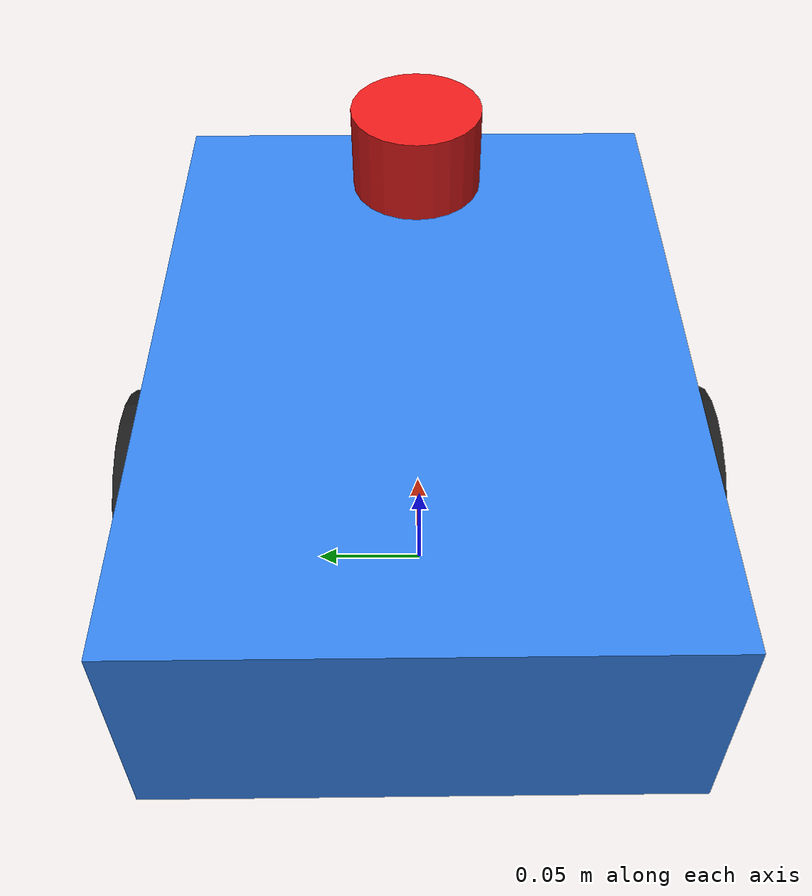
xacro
<?xml version="1.0"?>
<robot name="minibot" xmlns:xacro="http://ros.org/wiki/xacro">

  <!-- Per-robot args (set by spawner) -->
  <xacro:arg name="robot_ns" default="robot0"/>
  <xacro:property name="ns" value="$(arg robot_ns)"/>

  <!-- Geometry -->
  <xacro:property name="base_x"      value="0.30"/>
  <xacro:property name="base_y"      value="0.22"/>
  <xacro:property name="base_z"      value="0.10"/>
  <xacro:property name="wheel_r"     value="0.05"/>
  <xacro:property name="wheel_w"     value="0.025"/>
  <xacro:property name="wheel_sep"   value="0.24"/>   <!-- track width -->
  <xacro:property name="caster_r"    value="0.025"/>

  <xacro:property name="base_mass"   value="3.0"/>
  <xacro:property name="wheel_mass"  value="0.15"/>
  <xacro:property name="caster_mass" value="0.05"/>

  <!-- Inertia helpers -->
  <xacro:macro name="box_inertia" params="m x y z">
    <inertia ixx="${m*(y*y+z*z)/12.0}" ixy="0" ixz="0"
             iyy="${m*(x*x+z*z)/12.0}" iyz="0"
             izz="${m*(x*x+y*y)/12.0}"/>
  </xacro:macro>
  <xacro:macro name="cyl_inertia" params="m r h">
    <inertia ixx="${m*(3*r*r+h*h)/12.0}" ixy="0" ixz="0"
             iyy="${m*(3*r*r+h*h)/12.0}" iyz="0"
             izz="${m*r*r/2.0}"/>
  </xacro:macro>
  <xacro:macro name="sph_inertia" params="m r">
    <inertia ixx="${2*m*r*r/5.0}" ixy="0" ixz="0"
             iyy="${2*m*r*r/5.0}" iyz="0"
             izz="${2*m*r*r/5.0}"/>
  </xacro:macro>

  <!-- ============ Links ============ -->
  <link name="base_footprint"/>

  <link name="base_link">
    <visual>
      <origin xyz="0 0 0" rpy="0 0 0"/>
      <geometry><box size="${base_x} ${base_y} ${base_z}"/></geometry>
      <material name="body"><color rgba="0.2 0.5 0.9 1"/></material>
    </visual>
    <collision>
      <geometry><box size="${base_x} ${base_y} ${base_z}"/></geometry>
    </collision>
    <inertial>
      <mass value="${base_mass}"/>
      <xacro:box_inertia m="${base_mass}" x="${base_x}" y="${base_y}" z="${base_z}"/>
    </inertial>
  </link>

  <joint name="base_footprint_to_base_link" type="fixed">
    <parent link="base_footprint"/>
    <child  link="base_link"/>
    <origin xyz="0 0 ${wheel_r + base_z/2.0}" rpy="0 0 0"/>
  </joint>

  <!-- Wheels -->
  <xacro:macro name="wheel" params="side y_sign">
    <link name="${side}_wheel_link">
      <visual>
        <origin xyz="0 0 0" rpy="${pi/2} 0 0"/>
        <geometry><cylinder radius="${wheel_r}" length="${wheel_w}"/></geometry>
        <material name="rubber"><color rgba="0.1 0.1 0.1 1"/></material>
      </visual>
      <collision>
        <origin xyz="0 0 0" rpy="${pi/2} 0 0"/>
        <geometry><cylinder radius="${wheel_r}" length="${wheel_w}"/></geometry>
      </collision>
      <inertial>
        <mass value="${wheel_mass}"/>
        <xacro:cyl_inertia m="${wheel_mass}" r="${wheel_r}" h="${wheel_w}"/>
      </inertial>
    </link>
    <joint name="${side}_wheel_joint" type="continuous">
      <parent link="base_link"/>
      <child  link="${side}_wheel_link"/>
      <origin xyz="0 ${y_sign*wheel_sep/2.0} ${-base_z/2.0}" rpy="0 0 0"/>
      <axis xyz="0 1 0"/>
    </joint>
  </xacro:macro>

  <xacro:wheel side="left"  y_sign="1"/>
  <xacro:wheel side="right" y_sign="-1"/>

  <!-- Caster (free sphere up front) -->
  <link name="caster_link">
    <visual>
      <geometry><sphere radius="${caster_r}"/></geometry>
      <material name="rubber"><color rgba="0.1 0.1 0.1 1"/></material>
    </visual>
    <collision>
      <geometry><sphere radius="${caster_r}"/></geometry>
    </collision>
    <inertial>
      <mass value="${caster_mass}"/>
      <xacro:sph_inertia m="${caster_mass}" r="${caster_r}"/>
    </inertial>
  </link>
  <joint name="caster_joint" type="fixed">
    <parent link="base_link"/>
    <child  link="caster_link"/>
    <origin xyz="${base_x/2.0 - caster_r} 0 ${-base_z/2.0 - (wheel_r - caster_r)}" rpy="0 0 0"/>
  </joint>

  <!-- LiDAR 2D -->
  <link name="lidar_link">
    <visual>
      <geometry><cylinder radius="0.03" length="0.04"/></geometry>
      <material name="lidar"><color rgba="0.9 0.1 0.1 1"/></material>
    </visual>
    <collision>
      <geometry><cylinder radius="0.03" length="0.04"/></geometry>
    </collision>
    <inertial>
      <mass value="0.05"/>
      <xacro:cyl_inertia m="0.05" r="0.03" h="0.04"/>
    </inertial>
  </link>
  <joint name="lidar_joint" type="fixed">
    <parent link="base_link"/>
    <child  link="lidar_link"/>
    <origin xyz="${base_x/2.0 - 0.04} 0 ${base_z/2.0 + 0.02}" rpy="0 0 0"/>
  </joint>

  <!-- ============ Gazebo Harmonic ============ -->

  <!-- Diff-drive controller (native Gz Sim plugin) -->
  <gazebo>
    <plugin filename="gz-sim-diff-drive-system"
            name="gz::sim::systems::DiffDrive">
      <left_joint>left_wheel_joint</left_joint>
      <right_joint>right_wheel_joint</right_joint>
      <wheel_separation>${wheel_sep}</wheel_separation>
      <wheel_radius>${wheel_r}</wheel_radius>
      <odom_publish_frequency>50</odom_publish_frequency>
      <topic>/model/${ns}/cmd_vel</topic>
      <odom_topic>/model/${ns}/odometry</odom_topic>
      <tf_topic>/model/${ns}/tf</tf_topic>
      <frame_id>${ns}/odom</frame_id>
      <child_frame_id>${ns}/base_footprint</child_frame_id>
    </plugin>
  </gazebo>

  <!-- Joint state publisher (so Gz exposes joint angles) -->
  <gazebo>
    <plugin filename="gz-sim-joint-state-publisher-system"
            name="gz::sim::systems::JointStatePublisher">
      <topic>/model/${ns}/joint_states</topic>
    </plugin>
  </gazebo>

  <gazebo reference="lidar_link">
    <sensor name="lidar" type="gpu_lidar">
      <topic>/model/${ns}/scan</topic>
      <update_rate>10</update_rate>
      <ray>
        <scan>
          <horizontal>
            <samples>360</samples>
            <resolution>1</resolution>
            <min_angle>-3.1415</min_angle>
            <max_angle> 3.1415</max_angle>
          </horizontal>
        </scan>
        <range>
          <min>0.10</min>
          <max>10.0</max>
          <resolution>0.01</resolution>
        </range>
      </ray>
      <always_on>1</always_on>
      <visualize>true</visualize>
    </sensor>
  </gazebo>

  <gazebo reference="base_link"><material>Gazebo/Blue</material></gazebo>
  <gazebo reference="left_wheel_link"><mu1>1.0</mu1><mu2>1.0</mu2></gazebo>
  <gazebo reference="right_wheel_link"><mu1>1.0</mu1><mu2>1.0</mu2></gazebo>
  <gazebo reference="caster_link"><mu1>0.0</mu1><mu2>0.0</mu2></gazebo>

</robot>
